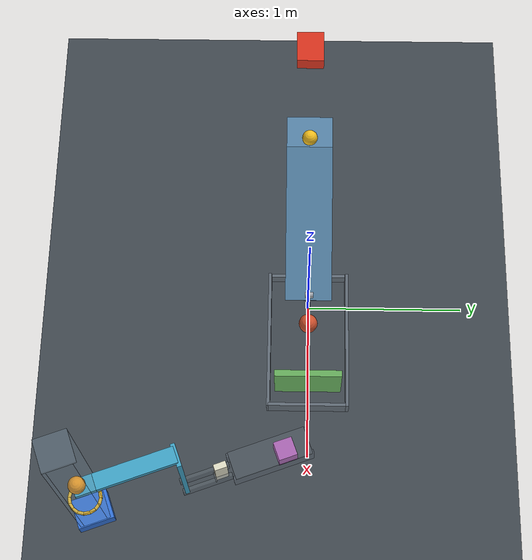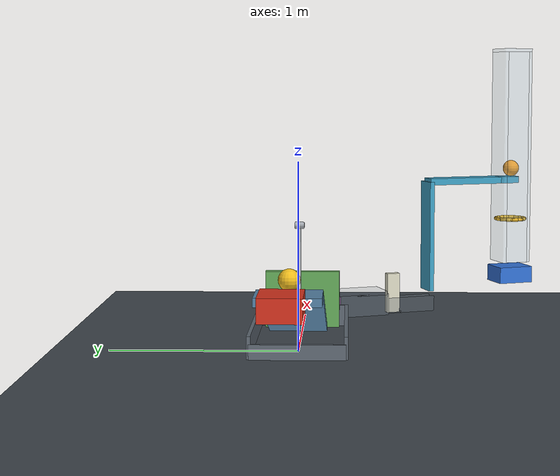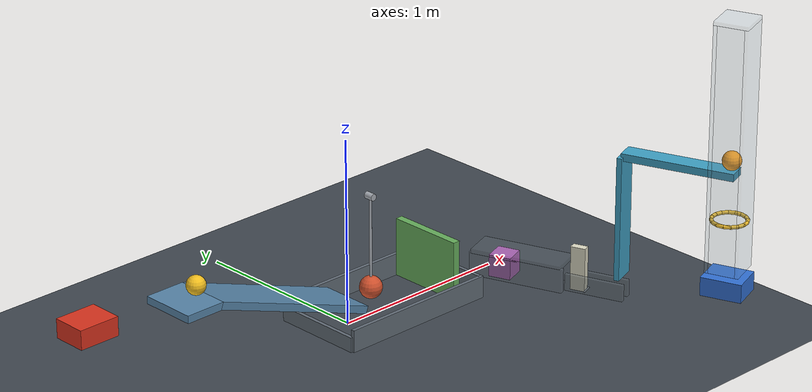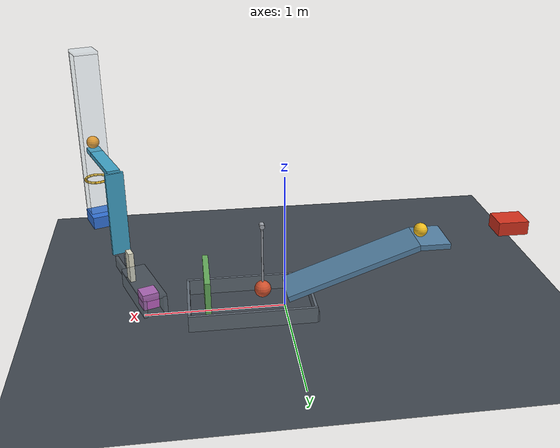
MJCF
<mujoco model="corrected_spring_ramp_pendulum_door_domino_lever_chain">
  <compiler angle="degree" autolimits="true"/>
  <option timestep="0.002" gravity="0 0 -9.81" integrator="implicitfast" cone="elliptic" iterations="100"/>
  <size njmax="5000" nconmax="1000"/>

  <visual>
    <headlight ambient="0.35 0.35 0.35" diffuse="0.65 0.65 0.65" specular="0.2 0.2 0.2"/>
    <map znear="0.01" zfar="30"/>
  </visual>

  <worldbody>
    <light name="main_light" pos="-1 -3 5" dir="0.2 0.4 -1" directional="true"/>
    <camera name="overview" pos="0 -4.8 3.0" xyaxes="1 0 0 0 0.48 0.877"/>

    <geom name="floor" type="plane" size="5 5 0.1" friction="0.68 0.005 0.005" condim="6" solref="0.006 0.6901" solimp="0.95 0.99 0.001" rgba="0.25 0.28 0.31 1"/>

    <!-- Cart1's compression-only axial spring becomes slack after q=0.20 m. -->
    <!-- First cart-ball contact occurs at q=0.50 m. -->
    <body name="cart1" pos="-1.63969262 0 0.54702014">
      <joint name="cart1_slide" type="slide" axis="1 0 0" damping="0.20" limited="true" range="0 0.58" solreflimit="0.006 1"/>
      <geom name="cart1_chassis" type="box" size="0.11 0.09 0.05" mass="0.50" friction="0.68 0.005 0.005" condim="6" solref="0.006 0.6901" solimp="0.95 0.99 0.001" rgba="0.85 0.20 0.12 1"/>
    </body>

    <body name="ball1" pos="-0.97969262 0 0.54202014">
      <freejoint name="ball1_free"/>
      <geom name="ball1_sphere" type="sphere" size="0.05" mass="0.20" friction="0.68 0.005 0.005" condim="6" solref="0.006 0.6901" solimp="0.95 0.99 0.001" rgba="0.95 0.75 0.12 1"/>
    </body>

    <!-- Inclined top: length 1.00 m, width 0.30 m, slope 20 degrees, low end z=0.15. -->
    <body name="ramp1" pos="0 0 0">
      <geom name="ramp1_incline" type="box" pos="-0.47668671 0 0.30221629" quat="0.98480775 0 0.17364818 0" size="0.50 0.15 0.02" friction="0.68 0.005 0.005" condim="6" solref="0.006 0.6901" solimp="0.95 0.99 0.001" rgba="0.34 0.52 0.66 1"/>
      <geom name="ramp1_launch_shelf" type="box" pos="-1.04969262 0 0.47202014" size="0.11 0.15 0.02" friction="0.68 0.005 0.005" condim="6" solref="0.006 0.6901" solimp="0.95 0.99 0.001" rgba="0.34 0.52 0.66 1"/>
    </body>

    <!-- Pivot-to-bob distance 0.50 m; total mass 0.35 kg. -->
    <!-- Bob's initial near surface is 0.10 m beyond the ramp's low end. -->
    <body name="pendulum1" pos="0.16 0 0.65">
      <joint name="pendulum1_hinge" type="hinge" axis="0 -1 0" damping="0.04" limited="true" range="0 40" solreflimit="0.006 1"/>
      <geom name="pendulum1_hub" type="cylinder" quat="0.70710678 0.70710678 0 0" size="0.018 0.025" mass="0.01" friction="0.68 0.005 0.005" condim="6" solref="0.006 0.6901" solimp="0.95 0.99 0.001" rgba="0.65 0.67 0.70 1"/>
      <geom name="pendulum1_rod" type="capsule" fromto="0 0 0 0 0 -0.50" size="0.007" mass="0.04" friction="0.68 0.005 0.005" condim="6" solref="0.006 0.6901" solimp="0.95 0.99 0.001" rgba="0.65 0.67 0.70 1"/>
      <geom name="pendulum1_bob" type="sphere" pos="0 0 -0.50" size="0.06" mass="0.30" friction="0.68 0.005 0.005" condim="6" solref="0.006 0.6901" solimp="0.95 0.99 0.001" rgba="0.82 0.32 0.18 1"/>
    </body>

    <!-- Panel dimensions: width 0.42 m, height 0.32 m, thickness 0.04 m. -->
    <body name="door1" pos="0.557 -0.21 0.18">
      <joint name="door1_hinge" type="hinge" axis="0 0 -1" damping="0.04" limited="true" range="0 70" solreflimit="0.006 1"/>
      <geom name="door1_panel" type="box" pos="0 0.21 0" size="0.02 0.21 0.16" mass="0.45" friction="0.68 0.005 0.005" condim="6" solref="0.006 0.6901" solimp="0.95 0.99 0.001" rgba="0.40 0.68 0.36 1"/>
    </body>

    <!-- Travel direction is local +x, at world yaw -70 degrees. -->
    <!-- Initial block-front to domino-back distance is 0.32 m. -->
    <body name="block1" pos="0.9773229 -0.1368290 0.06" quat="0.81915204 0 0 -0.57357644">
      <freejoint name="block1_free"/>
      <geom name="block1_cube" type="box" size="0.06 0.06 0.06" mass="0.35" friction="0.68 0.005 0.005" condim="6" solref="0.006 0.6901" solimp="0.95 0.99 0.001" rgba="0.73 0.38 0.75 1"/>
    </body>

    <!-- Close-clearance side rails and roof prevent block1 from hopping or tumbling. -->
    <!-- The roof ends before domino1, leaving the domino free to topple. -->
    <body name="block1_guide" pos="0.9773229 -0.1368290 0" quat="0.81915204 0 0 -0.57357644">
      <geom name="block1_guide_left" type="box" pos="0.10 -0.075 0.065" size="0.26 0.013 0.065" friction="0.68 0.005 0.005" condim="6" solref="0.006 0.6901" solimp="0.95 0.99 0.001" rgba="0.46 0.51 0.56 0.35"/>
      <geom name="block1_guide_right" type="box" pos="0.10 0.075 0.065" size="0.26 0.013 0.065" friction="0.68 0.005 0.005" condim="6" solref="0.006 0.6901" solimp="0.95 0.99 0.001" rgba="0.46 0.51 0.56 0.35"/>
      <geom name="block1_guide_roof" type="box" pos="0.10 0 0.135" size="0.25 0.088 0.012" friction="0.68 0.005 0.005" condim="6" solref="0.006 0.6901" solimp="0.95 0.99 0.001" rgba="0.46 0.51 0.56 0.20"/>
    </body>

    <body name="domino1" pos="1.1209714 -0.5314999 0.12" quat="0.81915204 0 0 -0.57357644">
      <freejoint name="domino1_free"/>
      <geom name="domino1_tile" type="box" size="0.04 0.02 0.12" mass="0.25" friction="0.68 0.005 0.005" condim="6" solref="0.006 0.6901" solimp="0.95 0.99 0.001" rgba="0.88 0.87 0.78 1"/>
    </body>

    <!-- A small toe stop discourages forward sliding of the domino's lower edge. -->
    <!-- Low side rails discourage sideways falling without constraining a forward topple. -->
    <body name="domino1_guide" pos="1.1209714 -0.5314999 0" quat="0.81915204 0 0 -0.57357644">
      <geom name="domino1_guide_toe" type="capsule" fromto="0.044 -0.030 0.004 0.044 0.030 0.004" size="0.004" friction="0.68 0.005 0.005" condim="6" solref="0.006 0.6901" solimp="0.95 0.99 0.001" rgba="0.43 0.47 0.50 1"/>
      <geom name="domino1_guide_left" type="box" pos="0.10 -0.035 0.045" size="0.16 0.011 0.045" friction="0.68 0.005 0.005" condim="6" solref="0.006 0.6901" solimp="0.95 0.99 0.001" rgba="0.43 0.47 0.50 0.35"/>
      <geom name="domino1_guide_right" type="box" pos="0.10 0.035 0.045" size="0.16 0.011 0.045" friction="0.68 0.005 0.005" condim="6" solref="0.006 0.6901" solimp="0.95 0.99 0.001" rgba="0.43 0.47 0.50 0.35"/>
    </body>

    <!-- Main lever is 0.60 x 0.10 x 0.04 m, center-hinged, with total mass 0.50 kg. -->
    <!-- The widened massless striker connects the floor-level domino to the elevated beam. -->
    <!-- Initial domino-front to striker-front separation is approximately 0.18 m. -->
    <body name="lever1" pos="1.3036102 -1.0332920 0.80" quat="0.81915204 0 0 -0.57357644">
      <inertial pos="0 0 0" mass="0.50" diaginertia="0.0004833333 0.0150666667 0.0154166667"/>
      <joint name="lever1_hinge" type="hinge" axis="0 -1 0" damping="0.04" limited="true" range="0 45" solreflimit="0.006 1"/>
      <geom name="lever1_beam" type="box" size="0.30 0.05 0.02" mass="0.50" friction="0.68 0.005 0.005" condim="6" solref="0.006 0.6901" solimp="0.95 0.99 0.001" rgba="0.25 0.64 0.78 1"/>
      <geom name="lever1_left_striker" type="box" pos="-0.30 0 -0.3375" size="0.014 0.070 0.3375" mass="0" friction="0.68 0.005 0.005" condim="6" solref="0.006 0.6901" solimp="0.95 0.99 0.001" rgba="0.25 0.64 0.78 1"/>
    </body>

    <body name="ball2" pos="1.3959556 -1.2870090 0.87">
      <freejoint name="ball2_free"/>
      <geom name="ball2_sphere" type="sphere" size="0.05" mass="0.20" friction="0.68 0.005 0.005" condim="6" solref="0.006 0.6901" solimp="0.95 0.99 0.001" rgba="0.98 0.62 0.10 1"/>
    </body>

    <!-- Horizontal ring: inscribed clear diameter approximately 0.16 m. -->
    <!-- Ring center is 0.32 m directly below ball2's initial center. -->
    <body name="ring1" pos="1.3959556 -1.2870090 0.55">
      <geom name="ring1_segment_00" type="capsule" fromto="0.0917633 0 0 0.0847780 0.0351160 0" size="0.01" friction="0.68 0.005 0.005" condim="6" solref="0.006 0.6901" solimp="0.95 0.99 0.001" rgba="0.92 0.73 0.18 1"/>
      <geom name="ring1_segment_01" type="capsule" fromto="0.0847780 0.0351160 0 0.0648865 0.0648865 0" size="0.01" friction="0.68 0.005 0.005" condim="6" solref="0.006 0.6901" solimp="0.95 0.99 0.001" rgba="0.92 0.73 0.18 1"/>
      <geom name="ring1_segment_02" type="capsule" fromto="0.0648865 0.0648865 0 0.0351160 0.0847780 0" size="0.01" friction="0.68 0.005 0.005" condim="6" solref="0.006 0.6901" solimp="0.95 0.99 0.001" rgba="0.92 0.73 0.18 1"/>
      <geom name="ring1_segment_03" type="capsule" fromto="0.0351160 0.0847780 0 0 0.0917633 0" size="0.01" friction="0.68 0.005 0.005" condim="6" solref="0.006 0.6901" solimp="0.95 0.99 0.001" rgba="0.92 0.73 0.18 1"/>
      <geom name="ring1_segment_04" type="capsule" fromto="0 0.0917633 0 -0.0351160 0.0847780 0" size="0.01" friction="0.68 0.005 0.005" condim="6" solref="0.006 0.6901" solimp="0.95 0.99 0.001" rgba="0.92 0.73 0.18 1"/>
      <geom name="ring1_segment_05" type="capsule" fromto="-0.0351160 0.0847780 0 -0.0648865 0.0648865 0" size="0.01" friction="0.68 0.005 0.005" condim="6" solref="0.006 0.6901" solimp="0.95 0.99 0.001" rgba="0.92 0.73 0.18 1"/>
      <geom name="ring1_segment_06" type="capsule" fromto="-0.0648865 0.0648865 0 -0.0847780 0.0351160 0" size="0.01" friction="0.68 0.005 0.005" condim="6" solref="0.006 0.6901" solimp="0.95 0.99 0.001" rgba="0.92 0.73 0.18 1"/>
      <geom name="ring1_segment_07" type="capsule" fromto="-0.0847780 0.0351160 0 -0.0917633 0 0" size="0.01" friction="0.68 0.005 0.005" condim="6" solref="0.006 0.6901" solimp="0.95 0.99 0.001" rgba="0.92 0.73 0.18 1"/>
      <geom name="ring1_segment_08" type="capsule" fromto="-0.0917633 0 0 -0.0847780 -0.0351160 0" size="0.01" friction="0.68 0.005 0.005" condim="6" solref="0.006 0.6901" solimp="0.95 0.99 0.001" rgba="0.92 0.73 0.18 1"/>
      <geom name="ring1_segment_09" type="capsule" fromto="-0.0847780 -0.0351160 0 -0.0648865 -0.0648865 0" size="0.01" friction="0.68 0.005 0.005" condim="6" solref="0.006 0.6901" solimp="0.95 0.99 0.001" rgba="0.92 0.73 0.18 1"/>
      <geom name="ring1_segment_10" type="capsule" fromto="-0.0648865 -0.0648865 0 -0.0351160 -0.0847780 0" size="0.01" friction="0.68 0.005 0.005" condim="6" solref="0.006 0.6901" solimp="0.95 0.99 0.001" rgba="0.92 0.73 0.18 1"/>
      <geom name="ring1_segment_11" type="capsule" fromto="-0.0351160 -0.0847780 0 0 -0.0917633 0" size="0.01" friction="0.68 0.005 0.005" condim="6" solref="0.006 0.6901" solimp="0.95 0.99 0.001" rgba="0.92 0.73 0.18 1"/>
      <geom name="ring1_segment_12" type="capsule" fromto="0 -0.0917633 0 0.0351160 -0.0847780 0" size="0.01" friction="0.68 0.005 0.005" condim="6" solref="0.006 0.6901" solimp="0.95 0.99 0.001" rgba="0.92 0.73 0.18 1"/>
      <geom name="ring1_segment_13" type="capsule" fromto="0.0351160 -0.0847780 0 0.0648865 -0.0648865 0" size="0.01" friction="0.68 0.005 0.005" condim="6" solref="0.006 0.6901" solimp="0.95 0.99 0.001" rgba="0.92 0.73 0.18 1"/>
      <geom name="ring1_segment_14" type="capsule" fromto="0.0648865 -0.0648865 0 0.0847780 -0.0351160 0" size="0.01" friction="0.68 0.005 0.005" condim="6" solref="0.006 0.6901" solimp="0.95 0.99 0.001" rgba="0.92 0.73 0.18 1"/>
      <geom name="ring1_segment_15" type="capsule" fromto="0.0847780 -0.0351160 0 0.0917633 0 0" size="0.01" friction="0.68 0.005 0.005" condim="6" solref="0.006 0.6901" solimp="0.95 0.99 0.001" rgba="0.92 0.73 0.18 1"/>
    </body>

    <!-- Passive vertical guide keeps ball2 within the ring's clear aperture. -->
    <body name="ball2_guide" pos="1.3959556 -1.2870090 0" quat="0.81915204 0 0 -0.57357644">
      <geom name="ball2_guide_left" type="box" pos="-0.081 0 0.94" size="0.01 0.091 0.66" friction="0.68 0.005 0.005" condim="6" solref="0.006 0.6901" solimp="0.95 0.99 0.001" rgba="0.60 0.75 0.85 0.18"/>
      <geom name="ball2_guide_right" type="box" pos="0.081 0 0.94" size="0.01 0.091 0.66" friction="0.68 0.005 0.005" condim="6" solref="0.006 0.6901" solimp="0.95 0.99 0.001" rgba="0.60 0.75 0.85 0.18"/>
      <geom name="ball2_guide_front" type="box" pos="0 -0.081 0.94" size="0.071 0.01 0.66" friction="0.68 0.005 0.005" condim="6" solref="0.006 0.6901" solimp="0.95 0.99 0.001" rgba="0.60 0.75 0.85 0.18"/>
      <geom name="ball2_guide_back" type="box" pos="0 0.081 0.94" size="0.071 0.01 0.66" friction="0.68 0.005 0.005" condim="6" solref="0.006 0.6901" solimp="0.95 0.99 0.001" rgba="0.60 0.75 0.85 0.18"/>
      <geom name="ball2_guide_ceiling" type="box" pos="0 0 1.61" size="0.091 0.091 0.01" friction="0.68 0.005 0.005" condim="6" solref="0.006 0.6901" solimp="0.95 0.99 0.001" rgba="0.60 0.75 0.85 0.18"/>
    </body>

    <!-- Cart top is z=0.25; first ball contact occurs with ball center at z=0.30. -->
    <!-- This is 0.25 m below the ring center plane. -->
    <body name="cart2" pos="1.3959556 -1.2870090 0.20" quat="0.81915204 0 0 -0.57357644">
      <joint name="cart2_slide" type="slide" axis="1 0 0" damping="0.20" limited="true" range="-0.04 0.04" solreflimit="0.006 1"/>
      <geom name="cart2_chassis" type="box" size="0.11 0.09 0.05" mass="0.50" friction="0.68 0.005 0.005" condim="6" solref="0.006 0.6901" solimp="0.95 0.99 0.001" rgba="0.20 0.45 0.85 1"/>
    </body>

    <body name="ball1_catch" pos="0 0 0">
      <geom name="ball1_catch_front" type="box" pos="0.25 -0.25 0.06" size="0.45 0.01 0.06" friction="0.68 0.005 0.005" condim="6" solref="0.006 0.6901" solimp="0.95 0.99 0.001" rgba="0.38 0.42 0.46 1"/>
      <geom name="ball1_catch_back" type="box" pos="0.25 0.25 0.06" size="0.45 0.01 0.06" friction="0.68 0.005 0.005" condim="6" solref="0.006 0.6901" solimp="0.95 0.99 0.001" rgba="0.38 0.42 0.46 1"/>
      <geom name="ball1_catch_end" type="box" pos="0.69 0 0.06" size="0.01 0.25 0.06" friction="0.68 0.005 0.005" condim="6" solref="0.006 0.6901" solimp="0.95 0.99 0.001" rgba="0.38 0.42 0.46 1"/>
      <geom name="ball1_catch_start" type="box" pos="-0.20 0 0.04" size="0.01 0.25 0.04" friction="0.68 0.005 0.005" condim="6" solref="0.006 0.6901" solimp="0.95 0.99 0.001" rgba="0.38 0.42 0.46 1"/>
    </body>
  </worldbody>

  <contact>
    <exclude name="lever_guide_clearance" body1="lever1" body2="ball2_guide"/>
    <exclude name="cart2_guide_clearance" body1="cart2" body2="ball2_guide"/>
    <exclude name="door_catch_clearance" body1="door1" body2="ball1_catch"/>
    <exclude name="door_block_guide_clearance" body1="door1" body2="block1_guide"/>
    <exclude name="lever_domino_guide_clearance" body1="lever1" body2="domino1_guide"/>
  </contact>

  <tendon>
    <fixed name="cart1_axial_spring" stiffness="18" damping="0" springlength="0.20 10">
      <joint joint="cart1_slide" coef="1"/>
    </fixed>
  </tendon>

  <!-- Native affine-gain motor assistance, enabled by constant keyframe controls. -->
  <!-- All three produce zero torque at reset because q=qvel=0. -->
  <!-- Nonnegative force limits prevent reverse assistance. -->
  <actuator>
    <general name="pendulum1_assist" joint="pendulum1_hinge" gaintype="affine" gainprm="0 2.5 0.35" biastype="none" ctrllimited="true" ctrlrange="0 1" forcelimited="true" forcerange="0 3"/>
    <general name="door1_assist" joint="door1_hinge" gaintype="affine" gainprm="0 25 0.50" biastype="none" ctrllimited="true" ctrlrange="0 1" forcelimited="true" forcerange="0 10"/>
    <general name="lever1_assist" joint="lever1_hinge" gaintype="affine" gainprm="0 24 1.20" biastype="none" ctrllimited="true" ctrlrange="0 1" forcelimited="true" forcerange="0 4"/>
  </actuator>

  <!-- Reference positions are used; all initial velocities are zero. -->
  <keyframe>
    <key name="start" time="0" ctrl="1 1 1"/>
  </keyframe>
</mujoco>
